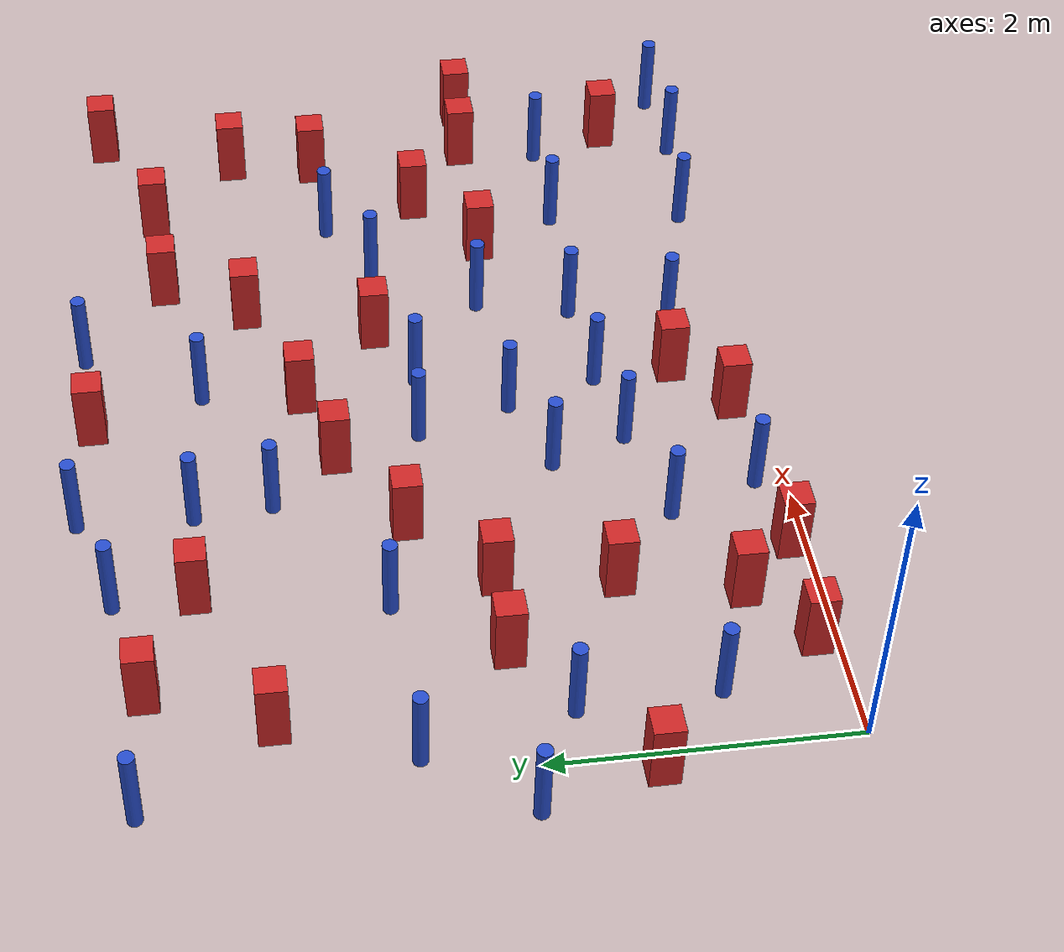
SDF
<sdf version="1.6">
 <model name="dense_73">
  <model name="pole_obstacle7">
   <static>true</static>
   <pose>2.25478810606 3.96422539197 2.88873142074e-08 -9.90536690801e-09 4.60219948966e-07 -1.20965994976e-07</pose>
   <link name="link">
    <pose>0 0 0.3 0 -0 0</pose>
    <inertial>
     <mass>1</mass>
     <inertia><ixx>0.145833</ixx><ixy>0</ixy><ixz>0</ixz><iyy>0.145833</iyy><iyz>0</iyz><izz>0.125</izz></inertia>
    </inertial>
    <collision name="collision">
     <geometry><cylinder><radius>0.05</radius><length>.6</length></cylinder></geometry>
    </collision>
    <visual name="visual">
     <geometry><cylinder><radius>0.05</radius><length>.6</length></cylinder></geometry>
     <material>
      <script><name>Gazebo/Blue</name><uri>file://media/materials/scripts/gazebo.material</uri></script>
     </material>
    </visual>
   </link>
  </model>
  <model name="pole_obstacle12">
   <static>true</static>
   <pose>2.28259964185 4.73559105646 2.88873142074e-08 -9.90536689859e-09 4.60219948989e-07 -1.20965994961e-07</pose>
   <link name="link">
    <pose>0 0 0.3 0 -0 0</pose>
    <inertial>
     <mass>1</mass>
     <inertia><ixx>0.145833</ixx><ixy>0</ixy><ixz>0</ixz><iyy>0.145833</iyy><iyz>0</iyz><izz>0.125</izz></inertia>
    </inertial>
    <collision name="collision">
     <geometry><cylinder><radius>0.05</radius><length>.6</length></cylinder></geometry>
    </collision>
    <visual name="visual">
     <geometry><cylinder><radius>0.05</radius><length>.6</length></cylinder></geometry>
     <material>
      <script><name>Gazebo/Blue</name><uri>file://media/materials/scripts/gazebo.material</uri></script>
     </material>
    </visual>
   </link>
  </model>
  <model name="square_post_obstacle15">
   <static>true</static>
   <pose>5.91913533131 1.71610015899 8.22691968438e-08 7.2212513382e-06 -7.54495500217e-07 2.29674213826e-05</pose>
   <link name="link">
    <pose>0 0 0.25 0 -0 0</pose>
    <inertial>
     <mass>100</mass>
     <inertia>
      <ixx>0.166667</ixx>
      <ixy>0</ixy>
      <ixz>0</ixz>
      <iyy>0.166667</iyy>
      <iyz>0</iyz>
      <izz>0.166667</izz>
     </inertia>
    </inertial>
    <collision name="collision"><geometry><box><size>.2 .2 .5</size></box></geometry></collision>
    <visual name="visual">
     <geometry><box><size>.2 .2 .5</size></box></geometry>
     <material>
      <script><name>Gazebo/Red</name><uri>file://media/materials/scripts/gazebo.material</uri></script>
     </material>
    </visual>
   </link>
  </model>
  <model name="square_post_obstacle16">
   <static>true</static>
   <pose>4.75993970819 1.72401905537 8.22691968438e-08 7.2212513382e-06 -7.54495500217e-07 2.29674213826e-05</pose>
   <link name="link">
    <pose>0 0 0.25 0 -0 0</pose>
    <inertial>
     <mass>100</mass>
     <inertia>
      <ixx>0.166667</ixx>
      <ixy>0</ixy>
      <ixz>0</ixz>
      <iyy>0.166667</iyy>
      <iyz>0</iyz>
      <izz>0.166667</izz>
     </inertia>
    </inertial>
    <collision name="collision"><geometry><box><size>.2 .2 .5</size></box></geometry></collision>
    <visual name="visual">
     <geometry><box><size>.2 .2 .5</size></box></geometry>
     <material>
      <script><name>Gazebo/Red</name><uri>file://media/materials/scripts/gazebo.material</uri></script>
     </material>
    </visual>
   </link>
  </model>
  <model name="pole_obstacle21">
   <static>true</static>
   <pose>2.86034051196 2.3964847344 2.88873142074e-08 -9.90536690232e-09 4.6021994898e-07 -1.20965994968e-07</pose>
   <link name="link">
    <pose>0 0 0.3 0 -0 0</pose>
    <inertial>
     <mass>1</mass>
     <inertia><ixx>0.145833</ixx><ixy>0</ixy><ixz>0</ixz><iyy>0.145833</iyy><iyz>0</iyz><izz>0.125</izz></inertia>
    </inertial>
    <collision name="collision">
     <geometry><cylinder><radius>0.05</radius><length>.6</length></cylinder></geometry>
    </collision>
    <visual name="visual">
     <geometry><cylinder><radius>0.05</radius><length>.6</length></cylinder></geometry>
     <material>
      <script><name>Gazebo/Blue</name><uri>file://media/materials/scripts/gazebo.material</uri></script>
     </material>
    </visual>
   </link>
  </model>
  <model name="pole_obstacle24">
   <static>true</static>
   <pose>5.11037407462 2.83061327207 2.88873142074e-08 -9.90536690245e-09 4.6021994898e-07 -1.20965994966e-07</pose>
   <link name="link">
    <pose>0 0 0.3 0 -0 0</pose>
    <inertial>
     <mass>1</mass>
     <inertia><ixx>0.145833</ixx><ixy>0</ixy><ixz>0</ixz><iyy>0.145833</iyy><iyz>0</iyz><izz>0.125</izz></inertia>
    </inertial>
    <collision name="collision">
     <geometry><cylinder><radius>0.05</radius><length>.6</length></cylinder></geometry>
    </collision>
    <visual name="visual">
     <geometry><cylinder><radius>0.05</radius><length>.6</length></cylinder></geometry>
     <material>
      <script><name>Gazebo/Blue</name><uri>file://media/materials/scripts/gazebo.material</uri></script>
     </material>
    </visual>
   </link>
  </model>
  <model name="square_post_obstacle28">
   <static>true</static>
   <pose>4.20673665937 3.49029811703 8.22691968438e-08 7.2212513382e-06 -7.54495500217e-07 2.29674213826e-05</pose>
   <link name="link">
    <pose>0 0 0.25 0 -0 0</pose>
    <inertial>
     <mass>100</mass>
     <inertia>
      <ixx>0.166667</ixx>
      <ixy>0</ixy>
      <ixz>0</ixz>
      <iyy>0.166667</iyy>
      <iyz>0</iyz>
      <izz>0.166667</izz>
     </inertia>
    </inertial>
    <collision name="collision"><geometry><box><size>.2 .2 .5</size></box></geometry></collision>
    <visual name="visual">
     <geometry><box><size>.2 .2 .5</size></box></geometry>
     <material>
      <script><name>Gazebo/Red</name><uri>file://media/materials/scripts/gazebo.material</uri></script>
     </material>
    </visual>
   </link>
  </model>
  <model name="pole_obstacle33">
   <static>true</static>
   <pose>6.40527286251 0.13451410764 2.88873142074e-08 -9.90536689234e-09 4.60219949004e-07 -1.20965994953e-07</pose>
   <link name="link">
    <pose>0 0 0.3 0 -0 0</pose>
    <inertial>
     <mass>1</mass>
     <inertia><ixx>0.145833</ixx><ixy>0</ixy><ixz>0</ixz><iyy>0.145833</iyy><iyz>0</iyz><izz>0.125</izz></inertia>
    </inertial>
    <collision name="collision">
     <geometry><cylinder><radius>0.05</radius><length>.6</length></cylinder></geometry>
    </collision>
    <visual name="visual">
     <geometry><cylinder><radius>0.05</radius><length>.6</length></cylinder></geometry>
     <material>
      <script><name>Gazebo/Blue</name><uri>file://media/materials/scripts/gazebo.material</uri></script>
     </material>
    </visual>
   </link>
  </model>
  <model name="pole_obstacle35">
   <static>true</static>
   <pose>3.39763952158 3.85298940122 2.88873142074e-08 -9.90536690232e-09 4.6021994898e-07 -1.20965994968e-07</pose>
   <link name="link">
    <pose>0 0 0.3 0 -0 0</pose>
    <inertial>
     <mass>1</mass>
     <inertia><ixx>0.145833</ixx><ixy>0</ixy><ixz>0</ixz><iyy>0.145833</iyy><iyz>0</iyz><izz>0.125</izz></inertia>
    </inertial>
    <collision name="collision">
     <geometry><cylinder><radius>0.05</radius><length>.6</length></cylinder></geometry>
    </collision>
    <visual name="visual">
     <geometry><cylinder><radius>0.05</radius><length>.6</length></cylinder></geometry>
     <material>
      <script><name>Gazebo/Blue</name><uri>file://media/materials/scripts/gazebo.material</uri></script>
     </material>
    </visual>
   </link>
  </model>
  <model name="square_post_obstacle38">
   <static>true</static>
   <pose>5.30407567016 2.15420816764 8.22691968438e-08 7.2212513382e-06 -7.54495500217e-07 2.29674213826e-05</pose>
   <link name="link">
    <pose>0 0 0.25 0 -0 0</pose>
    <inertial>
     <mass>100</mass>
     <inertia>
      <ixx>0.166667</ixx>
      <ixy>0</ixy>
      <ixz>0</ixz>
      <iyy>0.166667</iyy>
      <iyz>0</iyz>
      <izz>0.166667</izz>
     </inertia>
    </inertial>
    <collision name="collision"><geometry><box><size>.2 .2 .5</size></box></geometry></collision>
    <visual name="visual">
     <geometry><box><size>.2 .2 .5</size></box></geometry>
     <material>
      <script><name>Gazebo/Red</name><uri>file://media/materials/scripts/gazebo.material</uri></script>
     </material>
    </visual>
   </link>
  </model>
  <model name="pole_obstacle51">
   <static>true</static>
   <pose>-0.0943838447808 4.42185333415 2.88873142074e-08 -9.90536689804e-09 4.6021994899e-07 -1.2096599496e-07</pose>
   <link name="link">
    <pose>0 0 0.3 0 -0 0</pose>
    <inertial>
     <mass>1</mass>
     <inertia><ixx>0.145833</ixx><ixy>0</ixy><ixz>0</ixz><iyy>0.145833</iyy><iyz>0</iyz><izz>0.125</izz></inertia>
    </inertial>
    <collision name="collision">
     <geometry><cylinder><radius>0.05</radius><length>.6</length></cylinder></geometry>
    </collision>
    <visual name="visual">
     <geometry><cylinder><radius>0.05</radius><length>.6</length></cylinder></geometry>
     <material>
      <script><name>Gazebo/Blue</name><uri>file://media/materials/scripts/gazebo.material</uri></script>
     </material>
    </visual>
   </link>
  </model>
  <model name="square_post_obstacle41">
   <static>true</static>
   <pose>3.14698294766 4.61446405853 8.22691968438e-08 7.2212513382e-06 -7.54495500217e-07 2.29674213826e-05</pose>
   <link name="link">
    <pose>0 0 0.25 0 -0 0</pose>
    <inertial>
     <mass>100</mass>
     <inertia>
      <ixx>0.166667</ixx>
      <ixy>0</ixy>
      <ixz>0</ixz>
      <iyy>0.166667</iyy>
      <iyz>0</iyz>
      <izz>0.166667</izz>
     </inertia>
    </inertial>
    <collision name="collision"><geometry><box><size>.2 .2 .5</size></box></geometry></collision>
    <visual name="visual">
     <geometry><box><size>.2 .2 .5</size></box></geometry>
     <material>
      <script><name>Gazebo/Red</name><uri>file://media/materials/scripts/gazebo.material</uri></script>
     </material>
    </visual>
   </link>
  </model>
  <model name="square_post_obstacle42">
   <static>true</static>
   <pose>3.88788848472 2.59836692226 8.22691968438e-08 7.2212513382e-06 -7.54495500217e-07 2.29674213826e-05</pose>
   <link name="link">
    <pose>0 0 0.25 0 -0 0</pose>
    <inertial>
     <mass>100</mass>
     <inertia>
      <ixx>0.166667</ixx>
      <ixy>0</ixy>
      <ixz>0</ixz>
      <iyy>0.166667</iyy>
      <iyz>0</iyz>
      <izz>0.166667</izz>
     </inertia>
    </inertial>
    <collision name="collision"><geometry><box><size>.2 .2 .5</size></box></geometry></collision>
    <visual name="visual">
     <geometry><box><size>.2 .2 .5</size></box></geometry>
     <material>
      <script><name>Gazebo/Red</name><uri>file://media/materials/scripts/gazebo.material</uri></script>
     </material>
    </visual>
   </link>
  </model>
  <model name="pole_obstacle56">
   <static>true</static>
   <pose>5.8394028995 1.13227274472 2.88873142074e-08 -9.90536689445e-09 4.60219948999e-07 -1.20965994956e-07</pose>
   <link name="link">
    <pose>0 0 0.3 0 -0 0</pose>
    <inertial>
     <mass>1</mass>
     <inertia><ixx>0.145833</ixx><ixy>0</ixy><ixz>0</ixz><iyy>0.145833</iyy><iyz>0</iyz><izz>0.125</izz></inertia>
    </inertial>
    <collision name="collision">
     <geometry><cylinder><radius>0.05</radius><length>.6</length></cylinder></geometry>
    </collision>
    <visual name="visual">
     <geometry><cylinder><radius>0.05</radius><length>.6</length></cylinder></geometry>
     <material>
      <script><name>Gazebo/Blue</name><uri>file://media/materials/scripts/gazebo.material</uri></script>
     </material>
    </visual>
   </link>
  </model>
  <model name="pole_obstacle63">
   <static>true</static>
   <pose>2.14257791401 0.210842428128 2.88873142074e-08 -9.90536689395e-09 4.60219949e-07 -1.20965994954e-07</pose>
   <link name="link">
    <pose>0 0 0.3 0 -0 0</pose>
    <inertial>
     <mass>1</mass>
     <inertia><ixx>0.145833</ixx><ixy>0</ixy><ixz>0</ixz><iyy>0.145833</iyy><iyz>0</iyz><izz>0.125</izz></inertia>
    </inertial>
    <collision name="collision">
     <geometry><cylinder><radius>0.05</radius><length>.6</length></cylinder></geometry>
    </collision>
    <visual name="visual">
     <geometry><cylinder><radius>0.05</radius><length>.6</length></cylinder></geometry>
     <material>
      <script><name>Gazebo/Blue</name><uri>file://media/materials/scripts/gazebo.material</uri></script>
     </material>
    </visual>
   </link>
  </model>
  <model name="square_post_obstacle53">
   <static>true</static>
   <pose>6.01194403105 0.586845021487 8.22691968438e-08 7.2212513382e-06 -7.54495500217e-07 2.29674213826e-05</pose>
   <link name="link">
    <pose>0 0 0.25 0 -0 0</pose>
    <inertial>
     <mass>100</mass>
     <inertia>
      <ixx>0.166667</ixx>
      <ixy>0</ixy>
      <ixz>0</ixz>
      <iyy>0.166667</iyy>
      <iyz>0</iyz>
      <izz>0.166667</izz>
     </inertia>
    </inertial>
    <collision name="collision"><geometry><box><size>.2 .2 .5</size></box></geometry></collision>
    <visual name="visual">
     <geometry><box><size>.2 .2 .5</size></box></geometry>
     <material>
      <script><name>Gazebo/Red</name><uri>file://media/materials/scripts/gazebo.material</uri></script>
     </material>
    </visual>
   </link>
  </model>
  <model name="square_post_obstacle58">
   <static>true</static>
   <pose>5.33060784728 4.10329700988 8.22691968438e-08 7.2212513382e-06 -7.54495500217e-07 2.29674213826e-05</pose>
   <link name="link">
    <pose>0 0 0.25 0 -0 0</pose>
    <inertial>
     <mass>100</mass>
     <inertia>
      <ixx>0.166667</ixx>
      <ixy>0</ixy>
      <ixz>0</ixz>
      <iyy>0.166667</iyy>
      <iyz>0</iyz>
      <izz>0.166667</izz>
     </inertia>
    </inertial>
    <collision name="collision"><geometry><box><size>.2 .2 .5</size></box></geometry></collision>
    <visual name="visual">
     <geometry><box><size>.2 .2 .5</size></box></geometry>
     <material>
      <script><name>Gazebo/Red</name><uri>file://media/materials/scripts/gazebo.material</uri></script>
     </material>
    </visual>
   </link>
  </model>
  <model name="pole_obstacle75">
   <static>true</static>
   <pose>0.415852865481 0.807217076286 2.88873142074e-08 -9.9053668986e-09 4.60219948989e-07 -1.20965994961e-07</pose>
   <link name="link">
    <pose>0 0 0.3 0 -0 0</pose>
    <inertial>
     <mass>1</mass>
     <inertia><ixx>0.145833</ixx><ixy>0</ixy><ixz>0</ixz><iyy>0.145833</iyy><iyz>0</iyz><izz>0.125</izz></inertia>
    </inertial>
    <collision name="collision">
     <geometry><cylinder><radius>0.05</radius><length>.6</length></cylinder></geometry>
    </collision>
    <visual name="visual">
     <geometry><cylinder><radius>0.05</radius><length>.6</length></cylinder></geometry>
     <material>
      <script><name>Gazebo/Blue</name><uri>file://media/materials/scripts/gazebo.material</uri></script>
     </material>
    </visual>
   </link>
  </model>
  <model name="pole_obstacle76">
   <static>true</static>
   <pose>1.33635282837 2.75982136215 2.88873142074e-08 -9.90536689791e-09 4.6021994899e-07 -1.20965994959e-07</pose>
   <link name="link">
    <pose>0 0 0.3 0 -0 0</pose>
    <inertial>
     <mass>1</mass>
     <inertia><ixx>0.145833</ixx><ixy>0</ixy><ixz>0</ixz><iyy>0.145833</iyy><iyz>0</iyz><izz>0.125</izz></inertia>
    </inertial>
    <collision name="collision">
     <geometry><cylinder><radius>0.05</radius><length>.6</length></cylinder></geometry>
    </collision>
    <visual name="visual">
     <geometry><cylinder><radius>0.05</radius><length>.6</length></cylinder></geometry>
     <material>
      <script><name>Gazebo/Blue</name><uri>file://media/materials/scripts/gazebo.material</uri></script>
     </material>
    </visual>
   </link>
  </model>
  <model name="square_post_obstacle65">
   <static>true</static>
   <pose>5.94418810732 3.48934024343 8.22691968438e-08 7.2212513382e-06 -7.54495500217e-07 2.29674213826e-05</pose>
   <link name="link">
    <pose>0 0 0.25 0 -0 0</pose>
    <inertial>
     <mass>100</mass>
     <inertia>
      <ixx>0.166667</ixx>
      <ixy>0</ixy>
      <ixz>0</ixz>
      <iyy>0.166667</iyy>
      <iyz>0</iyz>
      <izz>0.166667</izz>
     </inertia>
    </inertial>
    <collision name="collision"><geometry><box><size>.2 .2 .5</size></box></geometry></collision>
    <visual name="visual">
     <geometry><box><size>.2 .2 .5</size></box></geometry>
     <material>
      <script><name>Gazebo/Red</name><uri>file://media/materials/scripts/gazebo.material</uri></script>
     </material>
    </visual>
   </link>
  </model>
  <model name="pole_obstacle92">
   <static>true</static>
   <pose>3.86695115488 4.65204683523 2.88873142074e-08 -9.90536689859e-09 4.60219948989e-07 -1.20965994961e-07</pose>
   <link name="link">
    <pose>0 0 0.3 0 -0 0</pose>
    <inertial>
     <mass>1</mass>
     <inertia><ixx>0.145833</ixx><ixy>0</ixy><ixz>0</ixz><iyy>0.145833</iyy><iyz>0</iyz><izz>0.125</izz></inertia>
    </inertial>
    <collision name="collision">
     <geometry><cylinder><radius>0.05</radius><length>.6</length></cylinder></geometry>
    </collision>
    <visual name="visual">
     <geometry><cylinder><radius>0.05</radius><length>.6</length></cylinder></geometry>
     <material>
      <script><name>Gazebo/Blue</name><uri>file://media/materials/scripts/gazebo.material</uri></script>
     </material>
    </visual>
   </link>
  </model>
  <model name="pole_obstacle101">
   <static>true</static>
   <pose>4.14185569916 1.82189329206 2.88873142074e-08 -9.90536689445e-09 4.60219948999e-07 -1.20965994956e-07</pose>
   <link name="link">
    <pose>0 0 0.3 0 -0 0</pose>
    <inertial>
     <mass>1</mass>
     <inertia><ixx>0.145833</ixx><ixy>0</ixy><ixz>0</ixz><iyy>0.145833</iyy><iyz>0</iyz><izz>0.125</izz></inertia>
    </inertial>
    <collision name="collision">
     <geometry><cylinder><radius>0.05</radius><length>.6</length></cylinder></geometry>
    </collision>
    <visual name="visual">
     <geometry><cylinder><radius>0.05</radius><length>.6</length></cylinder></geometry>
     <material>
      <script><name>Gazebo/Blue</name><uri>file://media/materials/scripts/gazebo.material</uri></script>
     </material>
    </visual>
   </link>
  </model>
  <model name="square_post_obstacle97">
   <static>true</static>
   <pose>0.731254355185 0.158467209167 8.22691968438e-08 7.2212513382e-06 -7.54495500217e-07 2.29674213826e-05</pose>
   <link name="link">
    <pose>0 0 0.25 0 -0 0</pose>
    <inertial>
     <mass>100</mass>
     <inertia>
      <ixx>0.166667</ixx>
      <ixy>0</ixy>
      <ixz>0</ixz>
      <iyy>0.166667</iyy>
      <iyz>0</iyz>
      <izz>0.166667</izz>
     </inertia>
    </inertial>
    <collision name="collision"><geometry><box><size>.2 .2 .5</size></box></geometry></collision>
    <visual name="visual">
     <geometry><box><size>.2 .2 .5</size></box></geometry>
     <material>
      <script><name>Gazebo/Red</name><uri>file://media/materials/scripts/gazebo.material</uri></script>
     </material>
    </visual>
   </link>
  </model>
  <model name="square_post_obstacle99">
   <static>true</static>
   <pose>1.55042809865 0.119002908548 8.22691968438e-08 7.2212513382e-06 -7.54495500217e-07 2.29674213826e-05</pose>
   <link name="link">
    <pose>0 0 0.25 0 -0 0</pose>
    <inertial>
     <mass>100</mass>
     <inertia>
      <ixx>0.166667</ixx>
      <ixy>0</ixy>
      <ixz>0</ixz>
      <iyy>0.166667</iyy>
      <iyz>0</iyz>
      <izz>0.166667</izz>
     </inertia>
    </inertial>
    <collision name="collision"><geometry><box><size>.2 .2 .5</size></box></geometry></collision>
    <visual name="visual">
     <geometry><box><size>.2 .2 .5</size></box></geometry>
     <material>
      <script><name>Gazebo/Red</name><uri>file://media/materials/scripts/gazebo.material</uri></script>
     </material>
    </visual>
   </link>
  </model>
  <model name="pole_obstacle104">
   <static>true</static>
   <pose>2.47149365143 1.5316345469 2.88873142074e-08 -9.90536689395e-09 4.60219949e-07 -1.20965994953e-07</pose>
   <link name="link">
    <pose>0 0 0.3 0 -0 0</pose>
    <inertial>
     <mass>1</mass>
     <inertia><ixx>0.145833</ixx><ixy>0</ixy><ixz>0</ixz><iyy>0.145833</iyy><iyz>0</iyz><izz>0.125</izz></inertia>
    </inertial>
    <collision name="collision">
     <geometry><cylinder><radius>0.05</radius><length>.6</length></cylinder></geometry>
    </collision>
    <visual name="visual">
     <geometry><cylinder><radius>0.05</radius><length>.6</length></cylinder></geometry>
     <material>
      <script><name>Gazebo/Blue</name><uri>file://media/materials/scripts/gazebo.material</uri></script>
     </material>
    </visual>
   </link>
  </model>
  <model name="pole_obstacle113">
   <static>true</static>
   <pose>3.26121144728 1.10969766319 2.88873142074e-08 -9.90536689395e-09 4.60219949e-07 -1.20965994953e-07</pose>
   <link name="link">
    <pose>0 0 0.3 0 -0 0</pose>
    <inertial>
     <mass>1</mass>
     <inertia><ixx>0.145833</ixx><ixy>0</ixy><ixz>0</ixz><iyy>0.145833</iyy><iyz>0</iyz><izz>0.125</izz></inertia>
    </inertial>
    <collision name="collision">
     <geometry><cylinder><radius>0.05</radius><length>.6</length></cylinder></geometry>
    </collision>
    <visual name="visual">
     <geometry><cylinder><radius>0.05</radius><length>.6</length></cylinder></geometry>
     <material>
      <script><name>Gazebo/Blue</name><uri>file://media/materials/scripts/gazebo.material</uri></script>
     </material>
    </visual>
   </link>
  </model>
  <model name="pole_obstacle114">
   <static>true</static>
   <pose>0.374679235922 1.73036193393 2.88873142074e-08 -9.90536689905e-09 4.60219948988e-07 -1.2096599496e-07</pose>
   <link name="link">
    <pose>0 0 0.3 0 -0 0</pose>
    <inertial>
     <mass>1</mass>
     <inertia><ixx>0.145833</ixx><ixy>0</ixy><ixz>0</ixz><iyy>0.145833</iyy><iyz>0</iyz><izz>0.125</izz></inertia>
    </inertial>
    <collision name="collision">
     <geometry><cylinder><radius>0.05</radius><length>.6</length></cylinder></geometry>
    </collision>
    <visual name="visual">
     <geometry><cylinder><radius>0.05</radius><length>.6</length></cylinder></geometry>
     <material>
      <script><name>Gazebo/Blue</name><uri>file://media/materials/scripts/gazebo.material</uri></script>
     </material>
    </visual>
   </link>
  </model>
  <model name="square_post_obstacle113">
   <static>true</static>
   <pose>2.87073478581 0.226027533704 8.22691968438e-08 7.2212513382e-06 -7.54495500217e-07 2.29674213826e-05</pose>
   <link name="link">
    <pose>0 0 0.25 0 -0 0</pose>
    <inertial>
     <mass>100</mass>
     <inertia>
      <ixx>0.166667</ixx>
      <ixy>0</ixy>
      <ixz>0</ixz>
      <iyy>0.166667</iyy>
      <iyz>0</iyz>
      <izz>0.166667</izz>
     </inertia>
    </inertial>
    <collision name="collision"><geometry><box><size>.2 .2 .5</size></box></geometry></collision>
    <visual name="visual">
     <geometry><box><size>.2 .2 .5</size></box></geometry>
     <material>
      <script><name>Gazebo/Red</name><uri>file://media/materials/scripts/gazebo.material</uri></script>
     </material>
    </visual>
   </link>
  </model>
  <model name="square_post_obstacle114">
   <static>true</static>
   <pose>5.83946786717 2.88007803381 8.22691968438e-08 7.2212513382e-06 -7.54495500217e-07 2.29674213826e-05</pose>
   <link name="link">
    <pose>0 0 0.25 0 -0 0</pose>
    <inertial>
     <mass>100</mass>
     <inertia>
      <ixx>0.166667</ixx>
      <ixy>0</ixy>
      <ixz>0</ixz>
      <iyy>0.166667</iyy>
      <iyz>0</iyz>
      <izz>0.166667</izz>
     </inertia>
    </inertial>
    <collision name="collision"><geometry><box><size>.2 .2 .5</size></box></geometry></collision>
    <visual name="visual">
     <geometry><box><size>.2 .2 .5</size></box></geometry>
     <material>
      <script><name>Gazebo/Red</name><uri>file://media/materials/scripts/gazebo.material</uri></script>
     </material>
    </visual>
   </link>
  </model>
  <model name="square_post_obstacle118">
   <static>true</static>
   <pose>1.54305309607 3.99320276237 8.22691968438e-08 7.2212513382e-06 -7.54495500217e-07 2.29674213826e-05</pose>
   <link name="link">
    <pose>0 0 0.25 0 -0 0</pose>
    <inertial>
     <mass>100</mass>
     <inertia>
      <ixx>0.166667</ixx>
      <ixy>0</ixy>
      <ixz>0</ixz>
      <iyy>0.166667</iyy>
      <iyz>0</iyz>
      <izz>0.166667</izz>
     </inertia>
    </inertial>
    <collision name="collision"><geometry><box><size>.2 .2 .5</size></box></geometry></collision>
    <visual name="visual">
     <geometry><box><size>.2 .2 .5</size></box></geometry>
     <material>
      <script><name>Gazebo/Red</name><uri>file://media/materials/scripts/gazebo.material</uri></script>
     </material>
    </visual>
   </link>
  </model>
  <model name="pole_obstacle135">
   <static>true</static>
   <pose>4.56372348728 2.54478385876 2.88873142074e-08 -9.90536690245e-09 4.6021994898e-07 -1.20965994966e-07</pose>
   <link name="link">
    <pose>0 0 0.3 0 -0 0</pose>
    <inertial>
     <mass>1</mass>
     <inertia><ixx>0.145833</ixx><ixy>0</ixy><ixz>0</ixz><iyy>0.145833</iyy><iyz>0</iyz><izz>0.125</izz></inertia>
    </inertial>
    <collision name="collision">
     <geometry><cylinder><radius>0.05</radius><length>.6</length></cylinder></geometry>
    </collision>
    <visual name="visual">
     <geometry><cylinder><radius>0.05</radius><length>.6</length></cylinder></geometry>
     <material>
      <script><name>Gazebo/Blue</name><uri>file://media/materials/scripts/gazebo.material</uri></script>
     </material>
    </visual>
   </link>
  </model>
  <model name="pole_obstacle136">
   <static>true</static>
   <pose>5.79006558571 0.0757111506193 2.88873142074e-08 -9.90536689727e-09 4.60219948992e-07 -1.20965994958e-07</pose>
   <link name="link">
    <pose>0 0 0.3 0 -0 0</pose>
    <inertial>
     <mass>1</mass>
     <inertia><ixx>0.145833</ixx><ixy>0</ixy><ixz>0</ixz><iyy>0.145833</iyy><iyz>0</iyz><izz>0.125</izz></inertia>
    </inertial>
    <collision name="collision">
     <geometry><cylinder><radius>0.05</radius><length>.6</length></cylinder></geometry>
    </collision>
    <visual name="visual">
     <geometry><cylinder><radius>0.05</radius><length>.6</length></cylinder></geometry>
     <material>
      <script><name>Gazebo/Blue</name><uri>file://media/materials/scripts/gazebo.material</uri></script>
     </material>
    </visual>
   </link>
  </model>
  <model name="pole_obstacle140">
   <static>true</static>
   <pose>2.66526173992 1.00405779359 2.88873142074e-08 -9.90536692432e-09 4.60219948928e-07 -1.2096599499e-07</pose>
   <link name="link">
    <pose>0 0 0.3 0 -0 0</pose>
    <inertial>
     <mass>1</mass>
     <inertia><ixx>0.145833</ixx><ixy>0</ixy><ixz>0</ixz><iyy>0.145833</iyy><iyz>0</iyz><izz>0.125</izz></inertia>
    </inertial>
    <collision name="collision">
     <geometry><cylinder><radius>0.05</radius><length>.6</length></cylinder></geometry>
    </collision>
    <visual name="visual">
     <geometry><cylinder><radius>0.05</radius><length>.6</length></cylinder></geometry>
     <material>
      <script><name>Gazebo/Blue</name><uri>file://media/materials/scripts/gazebo.material</uri></script>
     </material>
    </visual>
   </link>
  </model>
  <model name="pole_obstacle142">
   <static>true</static>
   <pose>3.40600078391 2.3549040393 2.88873142074e-08 -9.90536690232e-09 4.6021994898e-07 -1.20965994968e-07</pose>
   <link name="link">
    <pose>0 0 0.3 0 -0 0</pose>
    <inertial>
     <mass>1</mass>
     <inertia><ixx>0.145833</ixx><ixy>0</ixy><ixz>0</ixz><iyy>0.145833</iyy><iyz>0</iyz><izz>0.125</izz></inertia>
    </inertial>
    <collision name="collision">
     <geometry><cylinder><radius>0.05</radius><length>.6</length></cylinder></geometry>
    </collision>
    <visual name="visual">
     <geometry><cylinder><radius>0.05</radius><length>.6</length></cylinder></geometry>
     <material>
      <script><name>Gazebo/Blue</name><uri>file://media/materials/scripts/gazebo.material</uri></script>
     </material>
    </visual>
   </link>
  </model>
  <model name="pole_obstacle147">
   <static>true</static>
   <pose>3.06055036785 1.74684611782 2.88873142074e-08 -9.90536689395e-09 4.60219949e-07 -1.20965994953e-07</pose>
   <link name="link">
    <pose>0 0 0.3 0 -0 0</pose>
    <inertial>
     <mass>1</mass>
     <inertia><ixx>0.145833</ixx><ixy>0</ixy><ixz>0</ixz><iyy>0.145833</iyy><iyz>0</iyz><izz>0.125</izz></inertia>
    </inertial>
    <collision name="collision">
     <geometry><cylinder><radius>0.05</radius><length>.6</length></cylinder></geometry>
    </collision>
    <visual name="visual">
     <geometry><cylinder><radius>0.05</radius><length>.6</length></cylinder></geometry>
     <material>
      <script><name>Gazebo/Blue</name><uri>file://media/materials/scripts/gazebo.material</uri></script>
     </material>
    </visual>
   </link>
  </model>
  <model name="pole_obstacle149">
   <static>true</static>
   <pose>5.04340811305 1.13180181886 2.88873142074e-08 -9.90536689445e-09 4.60219948999e-07 -1.20965994956e-07</pose>
   <link name="link">
    <pose>0 0 0.3 0 -0 0</pose>
    <inertial>
     <mass>1</mass>
     <inertia><ixx>0.145833</ixx><ixy>0</ixy><ixz>0</ixz><iyy>0.145833</iyy><iyz>0</iyz><izz>0.125</izz></inertia>
    </inertial>
    <collision name="collision">
     <geometry><cylinder><radius>0.05</radius><length>.6</length></cylinder></geometry>
    </collision>
    <visual name="visual">
     <geometry><cylinder><radius>0.05</radius><length>.6</length></cylinder></geometry>
     <material>
      <script><name>Gazebo/Blue</name><uri>file://media/materials/scripts/gazebo.material</uri></script>
     </material>
    </visual>
   </link>
  </model>
  <model name="pole_obstacle152">
   <static>true</static>
   <pose>2.30469984575 3.43775363577 2.88873142074e-08 -9.90536690232e-09 4.6021994898e-07 -1.20965994968e-07</pose>
   <link name="link">
    <pose>0 0 0.3 0 -0 0</pose>
    <inertial>
     <mass>1</mass>
     <inertia><ixx>0.145833</ixx><ixy>0</ixy><ixz>0</ixz><iyy>0.145833</iyy><iyz>0</iyz><izz>0.125</izz></inertia>
    </inertial>
    <collision name="collision">
     <geometry><cylinder><radius>0.05</radius><length>.6</length></cylinder></geometry>
    </collision>
    <visual name="visual">
     <geometry><cylinder><radius>0.05</radius><length>.6</length></cylinder></geometry>
     <material>
      <script><name>Gazebo/Blue</name><uri>file://media/materials/scripts/gazebo.material</uri></script>
     </material>
    </visual>
   </link>
  </model>
  <model name="pole_obstacle153">
   <static>true</static>
   <pose>-0.337808282046 2.05604630073 2.88873142074e-08 -9.90536689663e-09 4.60219948993e-07 -1.20965994959e-07</pose>
   <link name="link">
    <pose>0 0 0.3 0 -0 0</pose>
    <inertial>
     <mass>1</mass>
     <inertia><ixx>0.145833</ixx><ixy>0</ixy><ixz>0</ixz><iyy>0.145833</iyy><iyz>0</iyz><izz>0.125</izz></inertia>
    </inertial>
    <collision name="collision">
     <geometry><cylinder><radius>0.05</radius><length>.6</length></cylinder></geometry>
    </collision>
    <visual name="visual">
     <geometry><cylinder><radius>0.05</radius><length>.6</length></cylinder></geometry>
     <material>
      <script><name>Gazebo/Blue</name><uri>file://media/materials/scripts/gazebo.material</uri></script>
     </material>
    </visual>
   </link>
  </model>
  <model name="pole_obstacle156">
   <static>true</static>
   <pose>1.92611988852 0.822237199407 2.88873142074e-08 -9.90536689692e-09 4.60219948993e-07 -1.20965994958e-07</pose>
   <link name="link">
    <pose>0 0 0.3 0 -0 0</pose>
    <inertial>
     <mass>1</mass>
     <inertia><ixx>0.145833</ixx><ixy>0</ixy><ixz>0</ixz><iyy>0.145833</iyy><iyz>0</iyz><izz>0.125</izz></inertia>
    </inertial>
    <collision name="collision">
     <geometry><cylinder><radius>0.05</radius><length>.6</length></cylinder></geometry>
    </collision>
    <visual name="visual">
     <geometry><cylinder><radius>0.05</radius><length>.6</length></cylinder></geometry>
     <material>
      <script><name>Gazebo/Blue</name><uri>file://media/materials/scripts/gazebo.material</uri></script>
     </material>
    </visual>
   </link>
  </model>
  <model name="pole_obstacle158">
   <static>true</static>
   <pose>0.128564330782 2.71459476011 2.88873142074e-08 -9.90536692387e-09 4.60219948929e-07 -1.20965994988e-07</pose>
   <link name="link">
    <pose>0 0 0.3 0 -0 0</pose>
    <inertial>
     <mass>1</mass>
     <inertia><ixx>0.145833</ixx><ixy>0</ixy><ixz>0</ixz><iyy>0.145833</iyy><iyz>0</iyz><izz>0.125</izz></inertia>
    </inertial>
    <collision name="collision">
     <geometry><cylinder><radius>0.05</radius><length>.6</length></cylinder></geometry>
    </collision>
    <visual name="visual">
     <geometry><cylinder><radius>0.05</radius><length>.6</length></cylinder></geometry>
     <material>
      <script><name>Gazebo/Blue</name><uri>file://media/materials/scripts/gazebo.material</uri></script>
     </material>
    </visual>
   </link>
  </model>
  <model name="square_post_obstacle156">
   <static>true</static>
   <pose>3.28356651461 3.17143553689 8.22691968438e-08 7.2212513382e-06 -7.54495500217e-07 2.29674213826e-05</pose>
   <link name="link">
    <pose>0 0 0.25 0 -0 0</pose>
    <inertial>
     <mass>100</mass>
     <inertia>
      <ixx>0.166667</ixx>
      <ixy>0</ixy>
      <ixz>0</ixz>
      <iyy>0.166667</iyy>
      <iyz>0</iyz>
      <izz>0.166667</izz>
     </inertia>
    </inertial>
    <collision name="collision"><geometry><box><size>.2 .2 .5</size></box></geometry></collision>
    <visual name="visual">
     <geometry><box><size>.2 .2 .5</size></box></geometry>
     <material>
      <script><name>Gazebo/Red</name><uri>file://media/materials/scripts/gazebo.material</uri></script>
     </material>
    </visual>
   </link>
  </model>
  <model name="square_post_obstacle157">
   <static>true</static>
   <pose>-0.130570911177 1.30055610745 8.22691968438e-08 7.2212513382e-06 -7.54495500217e-07 2.29674213826e-05</pose>
   <link name="link">
    <pose>0 0 0.25 0 -0 0</pose>
    <inertial>
     <mass>100</mass>
     <inertia>
      <ixx>0.166667</ixx>
      <ixy>0</ixy>
      <ixz>0</ixz>
      <iyy>0.166667</iyy>
      <iyz>0</iyz>
      <izz>0.166667</izz>
     </inertia>
    </inertial>
    <collision name="collision"><geometry><box><size>.2 .2 .5</size></box></geometry></collision>
    <visual name="visual">
     <geometry><box><size>.2 .2 .5</size></box></geometry>
     <material>
      <script><name>Gazebo/Red</name><uri>file://media/materials/scripts/gazebo.material</uri></script>
     </material>
    </visual>
   </link>
  </model>
  <model name="square_post_obstacle164">
   <static>true</static>
   <pose>6.28947822583 4.46277734686 8.22691968438e-08 7.2212513382e-06 -7.54495500217e-07 2.29674213826e-05</pose>
   <link name="link">
    <pose>0 0 0.25 0 -0 0</pose>
    <inertial>
     <mass>100</mass>
     <inertia>
      <ixx>0.166667</ixx>
      <ixy>0</ixy>
      <ixz>0</ixz>
      <iyy>0.166667</iyy>
      <iyz>0</iyz>
      <izz>0.166667</izz>
     </inertia>
    </inertial>
    <collision name="collision"><geometry><box><size>.2 .2 .5</size></box></geometry></collision>
    <visual name="visual">
     <geometry><box><size>.2 .2 .5</size></box></geometry>
     <material>
      <script><name>Gazebo/Red</name><uri>file://media/materials/scripts/gazebo.material</uri></script>
     </material>
    </visual>
   </link>
  </model>
  <model name="pole_obstacle167">
   <static>true</static>
   <pose>3.83090991334 0.471799464773 2.88873142074e-08 -9.90536689151e-09 4.60219949006e-07 -1.20965994951e-07</pose>
   <link name="link">
    <pose>0 0 0.3 0 -0 0</pose>
    <inertial>
     <mass>1</mass>
     <inertia><ixx>0.145833</ixx><ixy>0</ixy><ixz>0</ixz><iyy>0.145833</iyy><iyz>0</iyz><izz>0.125</izz></inertia>
    </inertial>
    <collision name="collision">
     <geometry><cylinder><radius>0.05</radius><length>.6</length></cylinder></geometry>
    </collision>
    <visual name="visual">
     <geometry><cylinder><radius>0.05</radius><length>.6</length></cylinder></geometry>
     <material>
      <script><name>Gazebo/Blue</name><uri>file://media/materials/scripts/gazebo.material</uri></script>
     </material>
    </visual>
   </link>
  </model>
  <model name="square_post_obstacle166">
   <static>true</static>
   <pose>0.775731106932 4.3450734196 8.22691968438e-08 7.2212513382e-06 -7.54495500217e-07 2.29674213826e-05</pose>
   <link name="link">
    <pose>0 0 0.25 0 -0 0</pose>
    <inertial>
     <mass>100</mass>
     <inertia>
      <ixx>0.166667</ixx>
      <ixy>0</ixy>
      <ixz>0</ixz>
      <iyy>0.166667</iyy>
      <iyz>0</iyz>
      <izz>0.166667</izz>
     </inertia>
    </inertial>
    <collision name="collision"><geometry><box><size>.2 .2 .5</size></box></geometry></collision>
    <visual name="visual">
     <geometry><box><size>.2 .2 .5</size></box></geometry>
     <material>
      <script><name>Gazebo/Red</name><uri>file://media/materials/scripts/gazebo.material</uri></script>
     </material>
    </visual>
   </link>
  </model>
  <model name="square_post_obstacle169">
   <static>true</static>
   <pose>3.28781978675 0.568273804316 8.22691968438e-08 7.2212513382e-06 -7.54495500217e-07 2.29674213826e-05</pose>
   <link name="link">
    <pose>0 0 0.25 0 -0 0</pose>
    <inertial>
     <mass>100</mass>
     <inertia>
      <ixx>0.166667</ixx>
      <ixy>0</ixy>
      <ixz>0</ixz>
      <iyy>0.166667</iyy>
      <iyz>0</iyz>
      <izz>0.166667</izz>
     </inertia>
    </inertial>
    <collision name="collision"><geometry><box><size>.2 .2 .5</size></box></geometry></collision>
    <visual name="visual">
     <geometry><box><size>.2 .2 .5</size></box></geometry>
     <material>
      <script><name>Gazebo/Red</name><uri>file://media/materials/scripts/gazebo.material</uri></script>
     </material>
    </visual>
   </link>
  </model>
  <model name="square_post_obstacle174">
   <static>true</static>
   <pose>4.53590703878 4.06580607289 8.22691968438e-08 7.22125133819e-06 -7.54495500217e-07 2.29674213826e-05</pose>
   <link name="link">
    <pose>0 0 0.25 0 -0 0</pose>
    <inertial>
     <mass>100</mass>
     <inertia>
      <ixx>0.166667</ixx>
      <ixy>0</ixy>
      <ixz>0</ixz>
      <iyy>0.166667</iyy>
      <iyz>0</iyz>
      <izz>0.166667</izz>
     </inertia>
    </inertial>
    <collision name="collision"><geometry><box><size>.2 .2 .5</size></box></geometry></collision>
    <visual name="visual">
     <geometry><box><size>.2 .2 .5</size></box></geometry>
     <material>
      <script><name>Gazebo/Red</name><uri>file://media/materials/scripts/gazebo.material</uri></script>
     </material>
    </visual>
   </link>
  </model>
  <model name="square_post_obstacle175">
   <static>true</static>
   <pose>6.43059655058 1.68471212094 8.22691968438e-08 7.2212513382e-06 -7.54495500217e-07 2.29674213826e-05</pose>
   <link name="link">
    <pose>0 0 0.25 0 -0 0</pose>
    <inertial>
     <mass>100</mass>
     <inertia>
      <ixx>0.166667</ixx>
      <ixy>0</ixy>
      <ixz>0</ixz>
      <iyy>0.166667</iyy>
      <iyz>0</iyz>
      <izz>0.166667</izz>
     </inertia>
    </inertial>
    <collision name="collision"><geometry><box><size>.2 .2 .5</size></box></geometry></collision>
    <visual name="visual">
     <geometry><box><size>.2 .2 .5</size></box></geometry>
     <material>
      <script><name>Gazebo/Red</name><uri>file://media/materials/scripts/gazebo.material</uri></script>
     </material>
    </visual>
   </link>
  </model>
  <model name="square_post_obstacle182">
   <static>true</static>
   <pose>1.46752537294 2.07076103933 8.22691968438e-08 7.2212513382e-06 -7.54495500217e-07 2.29674213826e-05</pose>
   <link name="link">
    <pose>0 0 0.25 0 -0 0</pose>
    <inertial>
     <mass>100</mass>
     <inertia>
      <ixx>0.166667</ixx>
      <ixy>0</ixy>
      <ixz>0</ixz>
      <iyy>0.166667</iyy>
      <iyz>0</iyz>
      <izz>0.166667</izz>
     </inertia>
    </inertial>
    <collision name="collision"><geometry><box><size>.2 .2 .5</size></box></geometry></collision>
    <visual name="visual">
     <geometry><box><size>.2 .2 .5</size></box></geometry>
     <material>
      <script><name>Gazebo/Red</name><uri>file://media/materials/scripts/gazebo.material</uri></script>
     </material>
    </visual>
   </link>
  </model>
  <model name="pole_obstacle185">
   <static>true</static>
   <pose>3.98613667231 1.1697011549 2.88873142074e-08 -9.90536689315e-09 4.60219949002e-07 -1.20965994954e-07</pose>
   <link name="link">
    <pose>0 0 0.3 0 -0 0</pose>
    <inertial>
     <mass>1</mass>
     <inertia><ixx>0.145833</ixx><ixy>0</ixy><ixz>0</ixz><iyy>0.145833</iyy><iyz>0</iyz><izz>0.125</izz></inertia>
    </inertial>
    <collision name="collision">
     <geometry><cylinder><radius>0.05</radius><length>.6</length></cylinder></geometry>
    </collision>
    <visual name="visual">
     <geometry><cylinder><radius>0.05</radius><length>.6</length></cylinder></geometry>
     <material>
      <script><name>Gazebo/Blue</name><uri>file://media/materials/scripts/gazebo.material</uri></script>
     </material>
    </visual>
   </link>
  </model>
  <model name="square_post_obstacle190">
   <static>true</static>
   <pose>0.447531935522 3.57022134452 8.22691968438e-08 7.22125133819e-06 -7.54495500217e-07 2.29674213826e-05</pose>
   <link name="link">
    <pose>0 0 0.25 0 -0 0</pose>
    <inertial>
     <mass>100</mass>
     <inertia>
      <ixx>0.166667</ixx>
      <ixy>0</ixy>
      <ixz>0</ixz>
      <iyy>0.166667</iyy>
      <iyz>0</iyz>
      <izz>0.166667</izz>
     </inertia>
    </inertial>
    <collision name="collision"><geometry><box><size>.2 .2 .5</size></box></geometry></collision>
    <visual name="visual">
     <geometry><box><size>.2 .2 .5</size></box></geometry>
     <material>
      <script><name>Gazebo/Red</name><uri>file://media/materials/scripts/gazebo.material</uri></script>
     </material>
    </visual>
   </link>
  </model>
  <model name="square_post_obstacle197">
   <static>true</static>
   <pose>2.01039641468 2.58095078123 8.22691968438e-08 7.2212513382e-06 -7.54495500217e-07 2.29674213826e-05</pose>
   <link name="link">
    <pose>0 0 0.25 0 -0 0</pose>
    <inertial>
     <mass>100</mass>
     <inertia>
      <ixx>0.166667</ixx>
      <ixy>0</ixy>
      <ixz>0</ixz>
      <iyy>0.166667</iyy>
      <iyz>0</iyz>
      <izz>0.166667</izz>
     </inertia>
    </inertial>
    <collision name="collision"><geometry><box><size>.2 .2 .5</size></box></geometry></collision>
    <visual name="visual">
     <geometry><box><size>.2 .2 .5</size></box></geometry>
     <material>
      <script><name>Gazebo/Red</name><uri>file://media/materials/scripts/gazebo.material</uri></script>
     </material>
    </visual>
   </link>
  </model>
  <model name="square_post_obstacle202">
   <static>true</static>
   <pose>1.36064406685 1.29215094709 8.22691968438e-08 7.2212513382e-06 -7.54495500217e-07 2.29674213826e-05</pose>
   <link name="link">
    <pose>0 0 0.25 0 -0 0</pose>
    <inertial>
     <mass>100</mass>
     <inertia>
      <ixx>0.166667</ixx>
      <ixy>0</ixy>
      <ixz>0</ixz>
      <iyy>0.166667</iyy>
      <iyz>0</iyz>
      <izz>0.166667</izz>
     </inertia>
    </inertial>
    <collision name="collision"><geometry><box><size>.2 .2 .5</size></box></geometry></collision>
    <visual name="visual">
     <geometry><box><size>.2 .2 .5</size></box></geometry>
     <material>
      <script><name>Gazebo/Red</name><uri>file://media/materials/scripts/gazebo.material</uri></script>
     </material>
    </visual>
   </link>
  </model>
  <model name="pole_obstacle204">
   <static>true</static>
   <pose>4.95444954009 0.153506207927 2.88873142074e-08 -9.90536689234e-09 4.60219949004e-07 -1.20965994953e-07</pose>
   <link name="link">
    <pose>0 0 0.3 0 -0 0</pose>
    <inertial>
     <mass>1</mass>
     <inertia><ixx>0.145833</ixx><ixy>0</ixy><ixz>0</ixz><iyy>0.145833</iyy><iyz>0</iyz><izz>0.125</izz></inertia>
    </inertial>
    <collision name="collision">
     <geometry><cylinder><radius>0.05</radius><length>.6</length></cylinder></geometry>
    </collision>
    <visual name="visual">
     <geometry><cylinder><radius>0.05</radius><length>.6</length></cylinder></geometry>
     <material>
      <script><name>Gazebo/Blue</name><uri>file://media/materials/scripts/gazebo.material</uri></script>
     </material>
    </visual>
   </link>
  </model>
  <model name="square_post_obstacle213">
   <static>true</static>
   <pose>0.861958856187 2.07661705482 8.22691968438e-08 7.2212513382e-06 -7.54495500217e-07 2.29674213826e-05</pose>
   <link name="link">
    <pose>0 0 0.25 0 -0 0</pose>
    <inertial>
     <mass>100</mass>
     <inertia>
      <ixx>0.166667</ixx>
      <ixy>0</ixy>
      <ixz>0</ixz>
      <iyy>0.166667</iyy>
      <iyz>0</iyz>
      <izz>0.166667</izz>
     </inertia>
    </inertial>
    <collision name="collision"><geometry><box><size>.2 .2 .5</size></box></geometry></collision>
    <visual name="visual">
     <geometry><box><size>.2 .2 .5</size></box></geometry>
     <material>
      <script><name>Gazebo/Red</name><uri>file://media/materials/scripts/gazebo.material</uri></script>
     </material>
    </visual>
   </link>
  </model>
  <model name="square_post_obstacle217">
   <static>true</static>
   <pose>2.67203281616 2.98850769763 8.22691968438e-08 7.2212513382e-06 -7.54495500217e-07 2.29674213826e-05</pose>
   <link name="link">
    <pose>0 0 0.25 0 -0 0</pose>
    <inertial>
     <mass>100</mass>
     <inertia>
      <ixx>0.166667</ixx>
      <ixy>0</ixy>
      <ixz>0</ixz>
      <iyy>0.166667</iyy>
      <iyz>0</iyz>
      <izz>0.166667</izz>
     </inertia>
    </inertial>
    <collision name="collision"><geometry><box><size>.2 .2 .5</size></box></geometry></collision>
    <visual name="visual">
     <geometry><box><size>.2 .2 .5</size></box></geometry>
     <material>
      <script><name>Gazebo/Red</name><uri>file://media/materials/scripts/gazebo.material</uri></script>
     </material>
    </visual>
   </link>
  </model>
  <model name="square_post_obstacle218">
   <static>true</static>
   <pose>1.17436867394 0.511588528641 8.22691968438e-08 7.22125133819e-06 -7.54495500217e-07 2.29674213826e-05</pose>
   <link name="link">
    <pose>0 0 0.25 0 -0 0</pose>
    <inertial>
     <mass>100</mass>
     <inertia>
      <ixx>0.166667</ixx>
      <ixy>0</ixy>
      <ixz>0</ixz>
      <iyy>0.166667</iyy>
      <iyz>0</iyz>
      <izz>0.166667</izz>
     </inertia>
    </inertial>
    <collision name="collision"><geometry><box><size>.2 .2 .5</size></box></geometry></collision>
    <visual name="visual">
     <geometry><box><size>.2 .2 .5</size></box></geometry>
     <material>
      <script><name>Gazebo/Red</name><uri>file://media/materials/scripts/gazebo.material</uri></script>
     </material>
    </visual>
   </link>
  </model>
  <model name="pole_obstacle226">
   <static>true</static>
   <pose>1.55119000913 4.52045002041 2.88873142074e-08 -9.90536689852e-09 4.60219948989e-07 -1.2096599496e-07</pose>
   <link name="link">
    <pose>0 0 0.3 0 -0 0</pose>
    <inertial>
     <mass>1</mass>
     <inertia><ixx>0.145833</ixx><ixy>0</ixy><ixz>0</ixz><iyy>0.145833</iyy><iyz>0</iyz><izz>0.125</izz></inertia>
    </inertial>
    <collision name="collision">
     <geometry><cylinder><radius>0.05</radius><length>.6</length></cylinder></geometry>
    </collision>
    <visual name="visual">
     <geometry><cylinder><radius>0.05</radius><length>.6</length></cylinder></geometry>
     <material>
      <script><name>Gazebo/Blue</name><uri>file://media/materials/scripts/gazebo.material</uri></script>
     </material>
    </visual>
   </link>
  </model>
 </model>
</sdf>
